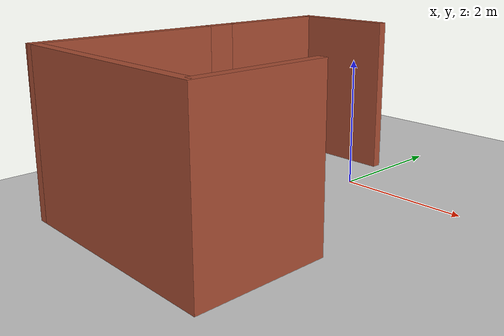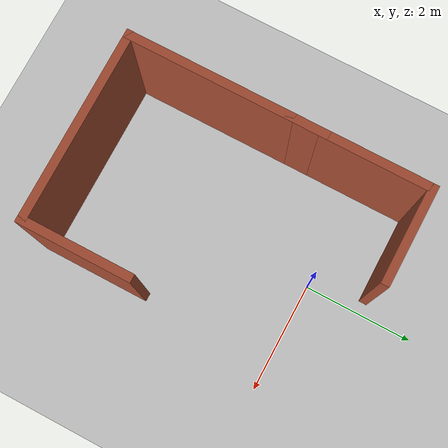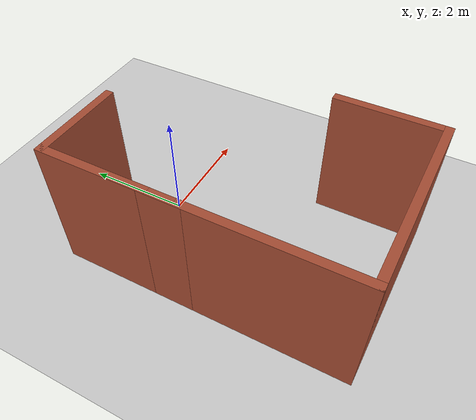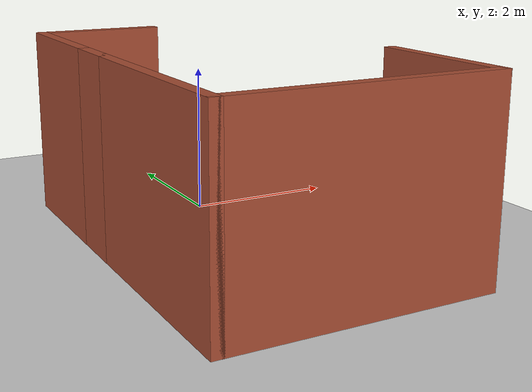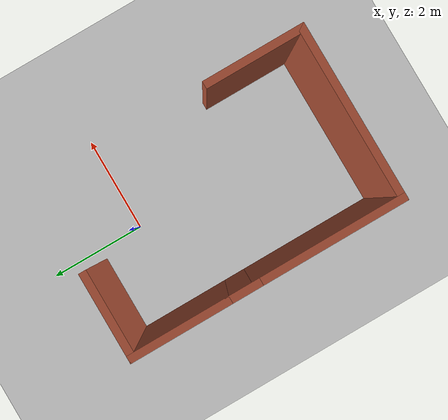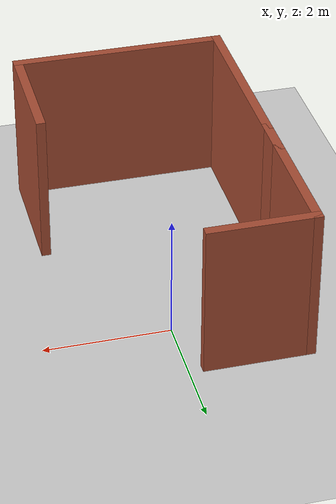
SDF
<sdf version="1.7">
 <world name="default">
  <scene><ambient>0.4 0.4 0.4 1</ambient><background>0.7 0.7 0.7 1</background><shadows>1</shadows></scene>
  <light name="sun" type="directional">
   <pose>0 0 10 0 -0 0</pose>
   <diffuse>0.8 0.8 0.8 1</diffuse>
   <specular>0.2 0.2 0.2 1</specular>
   <attenuation>
    <range>1000</range>
    <constant>0.9</constant>
    <linear>0.01</linear>
    <quadratic>0.001</quadratic>
   </attenuation>
   <direction>-0.5 0.1 -0.9</direction>
   <spot><inner_angle>0</inner_angle><outer_angle>0</outer_angle><falloff>0</falloff></spot>
  </light>
  <model name="ground_plane">
   <static>1</static>
   <link name="link">
    <collision name="collision">
     <geometry><plane><normal>0 0 1</normal><size>100 100</size></plane></geometry>
     <surface>
      <contact><collide_bitmask>65535</collide_bitmask></contact>
      <friction><ode><mu>100</mu><mu2>50</mu2></ode></friction>
     </surface>
    </collision>
    <visual name="visual">
     <cast_shadows>0</cast_shadows>
     <geometry><plane><normal>0 0 1</normal><size>100 100</size></plane></geometry>
     <material>
      <script><uri>file://media/materials/scripts/gazebo.material</uri><name>Gazebo/Grey</name></script>
     </material>
    </visual>
   </link>
  </model>
  <physics type="ode">
   <real_time_update_rate>1000</real_time_update_rate>
   <max_step_size>0.001</max_step_size>
   <real_time_factor>1</real_time_factor>
   <ode>
    <solver>
     <type>quick</type>
     <iters>150</iters>
     <precon_iters>0</precon_iters>
     <sor>1.4</sor>
     <use_dynamic_moi_rescaling>1</use_dynamic_moi_rescaling>
    </solver>
    <constraints>
     <cfm>1e-05</cfm>
     <erp>0.2</erp>
     <contact_max_correcting_vel>2000</contact_max_correcting_vel>
     <contact_surface_layer>0.01</contact_surface_layer>
    </constraints>
   </ode>
  </physics>
  <gravity>0 0 -9.8</gravity>
  <magnetic_field>6e-06 2.3e-05 -4.2e-05</magnetic_field>
  <atmosphere type="adiabatic"/>
  <spherical_coordinates>
   <surface_model>EARTH_WGS84</surface_model>
   <latitude_deg>0</latitude_deg>
   <longitude_deg>0</longitude_deg>
   <elevation>0</elevation>
   <heading_deg>0</heading_deg>
  </spherical_coordinates>
  <model name="basicbrickbuilding">
   <pose>-0.215 -1.66 0 0 -0 0</pose>
   <link name="Wall_1">
    <collision name="Wall_1_Collision">
     <geometry><box><size>0.75 0.15 2.5</size></box></geometry>
     <pose>0 0 1.25 0 -0 0</pose>
    </collision>
    <visual name="Wall_1_Visual">
     <pose>0 0 1.25 0 -0 0</pose>
     <geometry><box><size>0.75 0.15 2.5</size></box></geometry>
     <material>
      <script><uri>file://media/materials/scripts/gazebo.material</uri><name>Gazebo/Bricks</name></script>
      <ambient>1 1 1 1</ambient>
     </material>
     <meta><layer>0</layer></meta>
    </visual>
    <pose>-1.675 0.5 0 0 -0 1.5708</pose>
   </link>
   <link name="Wall_2">
    <collision name="Wall_2_Collision">
     <geometry><box><size>2 0.15 2.5</size></box></geometry>
     <pose>0 0 1.25 0 -0 0</pose>
    </collision>
    <visual name="Wall_2_Visual">
     <pose>0 0 1.25 0 -0 0</pose>
     <geometry><box><size>2 0.15 2.5</size></box></geometry>
     <material>
      <script><uri>file://media/materials/scripts/gazebo.material</uri><name>Gazebo/Bricks</name></script>
      <ambient>1 1 1 1</ambient>
     </material>
     <meta><layer>0</layer></meta>
    </visual>
    <pose>-1.675 1.725 0 0 -0 1.5708</pose>
   </link>
   <link name="Wall_3">
    <collision name="Wall_3_Collision">
     <geometry><box><size>1.75 0.15 2.5</size></box></geometry>
     <pose>0 0 1.25 0 -0 0</pose>
    </collision>
    <visual name="Wall_3_Visual">
     <pose>0 0 1.25 0 -0 0</pose>
     <geometry><box><size>1.75 0.15 2.5</size></box></geometry>
     <material>
      <script><uri>file://media/materials/scripts/gazebo.material</uri><name>Gazebo/Bricks</name></script>
      <ambient>1 1 1 1</ambient>
     </material>
     <meta><layer>0</layer></meta>
    </visual>
    <pose>-0.875 2.65 0 0 -0 0</pose>
   </link>
   <link name="Wall_6">
    <collision name="Wall_6_Collision">
     <geometry><box><size>3 0.15 2.5</size></box></geometry>
     <pose>0 0 1.25 0 -0 0</pose>
    </collision>
    <visual name="Wall_6_Visual">
     <pose>0 0 1.25 0 -0 0</pose>
     <geometry><box><size>3 0.15 2.5</size></box></geometry>
     <material>
      <script><uri>file://media/materials/scripts/gazebo.material</uri><name>Gazebo/Bricks</name></script>
      <ambient>1 1 1 1</ambient>
     </material>
     <meta><layer>0</layer></meta>
    </visual>
    <pose>-1.675 -1.225 0 0 -0 -1.5708</pose>
   </link>
   <link name="Wall_7">
    <collision name="Wall_7_Collision">
     <geometry><box><size>3.5 0.15 2.5</size></box></geometry>
     <pose>0 0 1.25 0 -0 0</pose>
    </collision>
    <visual name="Wall_7_Visual">
     <pose>0 0 1.25 0 -0 0</pose>
     <geometry><box><size>3.5 0.15 2.5</size></box></geometry>
     <material>
      <script><uri>file://media/materials/scripts/gazebo.material</uri><name>Gazebo/Bricks</name></script>
      <ambient>1 1 1 1</ambient>
     </material>
     <meta><layer>0</layer></meta>
    </visual>
    <pose>-0 -2.65 0 0 -0 0</pose>
   </link>
   <link name="Wall_8">
    <collision name="Wall_8_Collision">
     <geometry><box><size>2 0.15 2.5</size></box></geometry>
     <pose>0 0 1.25 0 -0 0</pose>
    </collision>
    <visual name="Wall_8_Visual">
     <pose>0 0 1.25 0 -0 0</pose>
     <geometry><box><size>2 0.15 2.5</size></box></geometry>
     <material>
      <script><uri>file://media/materials/scripts/gazebo.material</uri><name>Gazebo/Bricks</name></script>
      <ambient>1 1 1 1</ambient>
     </material>
     <meta><layer>0</layer></meta>
    </visual>
    <pose>1.675 -1.725 0 0 -0 1.5708</pose>
   </link>
   <static>1</static>
  </model>
 </world>
</sdf>
